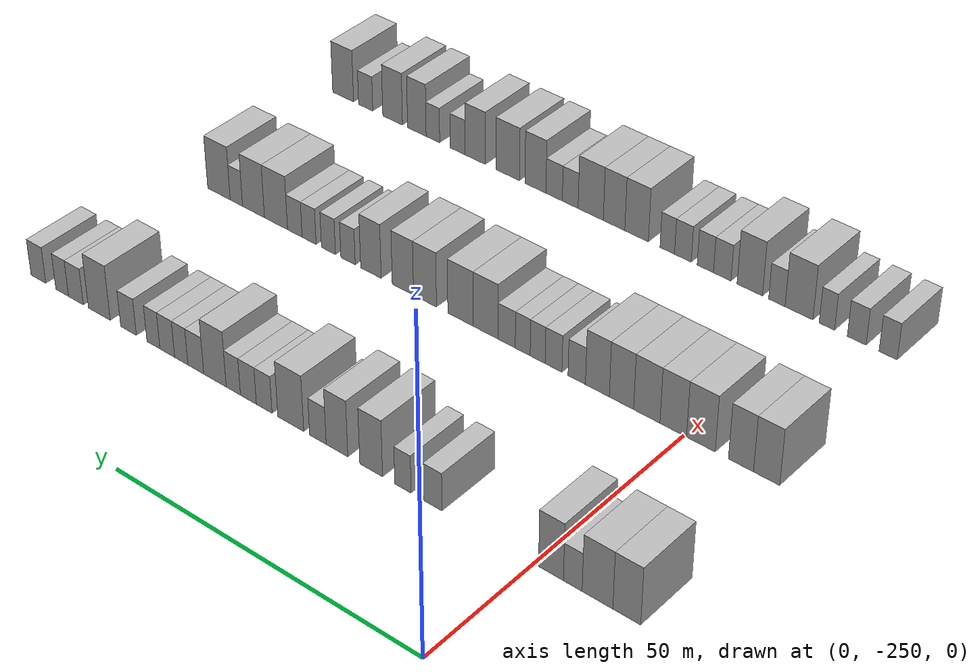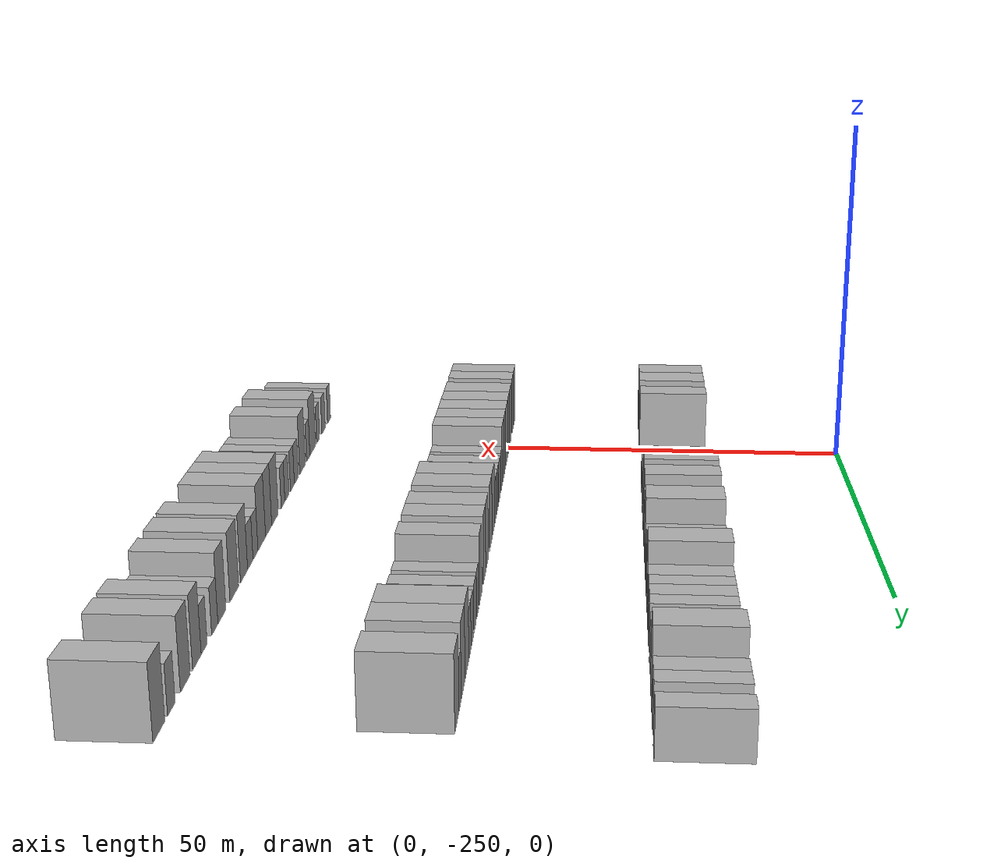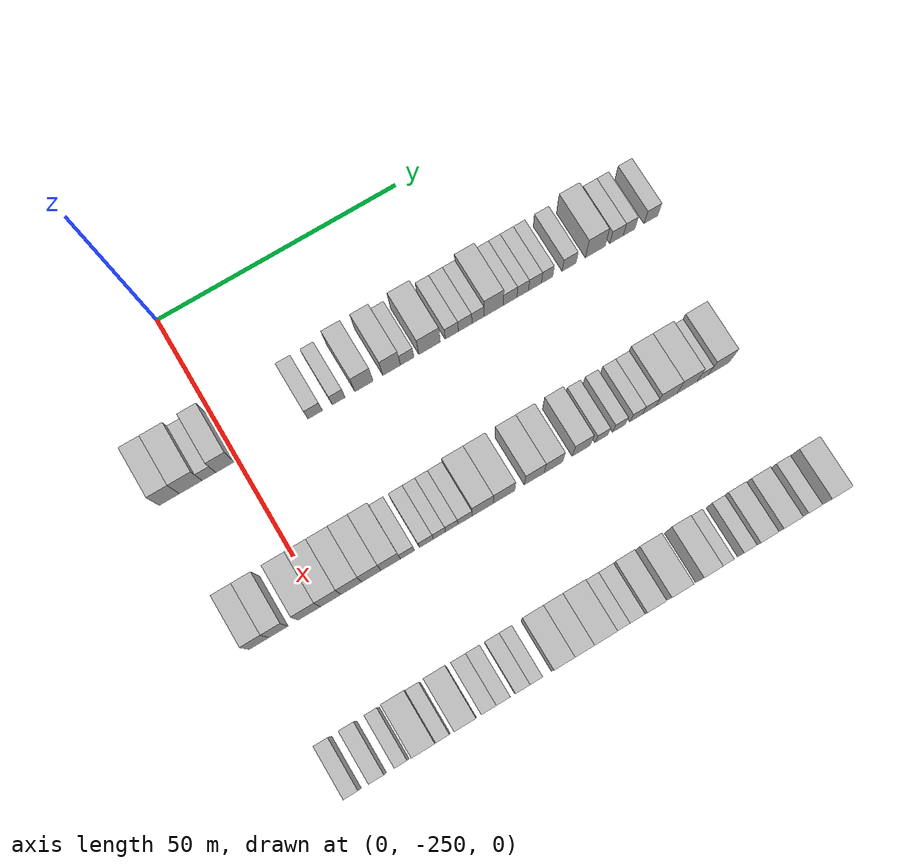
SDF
<sdf version="1.6">
 <world name="default">
  <model name="building_47">
   <static>1</static>
   <pose>25.0000 -263.6717 0 0.000000 0.000000 0.000000</pose>
   <link name="link">
    <pose>0 0 4.50 0 0 0</pose>
    <collision name="collision"><geometry><box><size>10.0000 4.0322 9.0000</size></box></geometry></collision>
    <visual name="visual">
     <cast_shadows>0</cast_shadows>
     <geometry><box><size>10.0000 4.0322 9.0000</size></box></geometry>
     <material>
      <script>
       <uri>model://HANNAS_wall/materials/scripts</uri>
       <uri>model://HANNAS_wall/materials/textures</uri>
       <name>vrc/HANNAS_wall</name>
      </script>
     </material>
    </visual>
   </link>
  </model>
  <model name="building_48">
   <static>1</static>
   <pose>25.0000 -259.4059 0 0.000000 0.000000 0.000000</pose>
   <link name="link">
    <pose>0 0 4.50 0 0 0</pose>
    <collision name="collision"><geometry><box><size>10.0000 4.4994 9.0000</size></box></geometry></collision>
    <visual name="visual">
     <cast_shadows>0</cast_shadows>
     <geometry><box><size>10.0000 4.4994 9.0000</size></box></geometry>
     <material>
      <script>
       <uri>model://HANNAS_wall/materials/scripts</uri>
       <uri>model://HANNAS_wall/materials/textures</uri>
       <name>vrc/HANNAS_wall</name>
      </script>
     </material>
    </visual>
   </link>
  </model>
  <model name="building_49">
   <static>1</static>
   <pose>25.0000 -255.7638 0 0.000000 0.000000 0.000000</pose>
   <link name="link">
    <pose>0 0 3.00 0 0 0</pose>
    <collision name="collision"><geometry><box><size>10.0000 2.7847 6.0000</size></box></geometry></collision>
    <visual name="visual">
     <cast_shadows>0</cast_shadows>
     <geometry><box><size>10.0000 2.7847 6.0000</size></box></geometry>
     <material>
      <script>
       <uri>model://HANNAS_wall/materials/scripts</uri>
       <uri>model://HANNAS_wall/materials/textures</uri>
       <name>vrc/HANNAS_wall</name>
      </script>
     </material>
    </visual>
   </link>
  </model>
  <model name="building_50">
   <static>1</static>
   <pose>25.0000 -252.5081 0 0.000000 0.000000 0.000000</pose>
   <link name="link">
    <pose>0 0 4.50 0 0 0</pose>
    <collision name="collision"><geometry><box><size>10.0000 3.7268 9.0000</size></box></geometry></collision>
    <visual name="visual">
     <cast_shadows>0</cast_shadows>
     <geometry><box><size>10.0000 3.7268 9.0000</size></box></geometry>
     <material>
      <script>
       <uri>model://HANNAS_wall/materials/scripts</uri>
       <uri>model://HANNAS_wall/materials/textures</uri>
       <name>vrc/HANNAS_wall</name>
      </script>
     </material>
    </visual>
   </link>
  </model>
  <model name="building_51">
   <static>1</static>
   <pose>25.0000 -234.1834 0 0.000000 0.000000 0.000000</pose>
   <link name="link">
    <pose>0 0 3.00 0 0 0</pose>
    <collision name="collision"><geometry><box><size>10.0000 2.9742 6.0000</size></box></geometry></collision>
    <visual name="visual">
     <cast_shadows>0</cast_shadows>
     <geometry><box><size>10.0000 2.9742 6.0000</size></box></geometry>
     <material>
      <script>
       <uri>model://HANNAS_wall/materials/scripts</uri>
       <uri>model://HANNAS_wall/materials/textures</uri>
       <name>vrc/HANNAS_wall</name>
      </script>
     </material>
    </visual>
   </link>
  </model>
  <model name="building_52">
   <static>1</static>
   <pose>25.0000 -229.3756 0 0.000000 0.000000 0.000000</pose>
   <link name="link">
    <pose>0 0 3.00 0 0 0</pose>
    <collision name="collision"><geometry><box><size>10.0000 2.6413 6.0000</size></box></geometry></collision>
    <visual name="visual">
     <cast_shadows>0</cast_shadows>
     <geometry><box><size>10.0000 2.6413 6.0000</size></box></geometry>
     <material>
      <script>
       <uri>model://HANNAS_wall/materials/scripts</uri>
       <uri>model://HANNAS_wall/materials/textures</uri>
       <name>vrc/HANNAS_wall</name>
      </script>
     </material>
    </visual>
   </link>
  </model>
  <model name="building_53">
   <static>1</static>
   <pose>25.0000 -224.1693 0 0.000000 0.000000 0.000000</pose>
   <link name="link">
    <pose>0 0 4.50 0 0 0</pose>
    <collision name="collision"><geometry><box><size>10.0000 3.7714 9.0000</size></box></geometry></collision>
    <visual name="visual">
     <cast_shadows>0</cast_shadows>
     <geometry><box><size>10.0000 3.7714 9.0000</size></box></geometry>
     <material>
      <script>
       <uri>model://HANNAS_wall/materials/scripts</uri>
       <uri>model://HANNAS_wall/materials/textures</uri>
       <name>vrc/HANNAS_wall</name>
      </script>
     </material>
    </visual>
   </link>
  </model>
  <model name="building_54">
   <static>1</static>
   <pose>25.0000 -218.4559 0 0.000000 0.000000 0.000000</pose>
   <link name="link">
    <pose>0 0 4.50 0 0 0</pose>
    <collision name="collision"><geometry><box><size>10.0000 3.6554 9.0000</size></box></geometry></collision>
    <visual name="visual">
     <cast_shadows>0</cast_shadows>
     <geometry><box><size>10.0000 3.6554 9.0000</size></box></geometry>
     <material>
      <script>
       <uri>model://HANNAS_wall/materials/scripts</uri>
       <uri>model://HANNAS_wall/materials/textures</uri>
       <name>vrc/HANNAS_wall</name>
      </script>
     </material>
    </visual>
   </link>
  </model>
  <model name="building_55">
   <static>1</static>
   <pose>25.0000 -215.2184 0 0.000000 0.000000 0.000000</pose>
   <link name="link">
    <pose>0 0 3.00 0 0 0</pose>
    <collision name="collision"><geometry><box><size>10.0000 2.8195 6.0000</size></box></geometry></collision>
    <visual name="visual">
     <cast_shadows>0</cast_shadows>
     <geometry><box><size>10.0000 2.8195 6.0000</size></box></geometry>
     <material>
      <script>
       <uri>model://HANNAS_wall/materials/scripts</uri>
       <uri>model://HANNAS_wall/materials/textures</uri>
       <name>vrc/HANNAS_wall</name>
      </script>
     </material>
    </visual>
   </link>
  </model>
  <model name="building_56">
   <static>1</static>
   <pose>25.0000 -210.5609 0 0.000000 0.000000 0.000000</pose>
   <link name="link">
    <pose>0 0 4.50 0 0 0</pose>
    <collision name="collision"><geometry><box><size>10.0000 4.4955 9.0000</size></box></geometry></collision>
    <visual name="visual">
     <cast_shadows>0</cast_shadows>
     <geometry><box><size>10.0000 4.4955 9.0000</size></box></geometry>
     <material>
      <script>
       <uri>model://HANNAS_wall/materials/scripts</uri>
       <uri>model://HANNAS_wall/materials/textures</uri>
       <name>vrc/HANNAS_wall</name>
      </script>
     </material>
    </visual>
   </link>
  </model>
  <model name="building_57">
   <static>1</static>
   <pose>25.0000 -205.9289 0 0.000000 0.000000 0.000000</pose>
   <link name="link">
    <pose>0 0 3.00 0 0 0</pose>
    <collision name="collision"><geometry><box><size>10.0000 2.7685 6.0000</size></box></geometry></collision>
    <visual name="visual">
     <cast_shadows>0</cast_shadows>
     <geometry><box><size>10.0000 2.7685 6.0000</size></box></geometry>
     <material>
      <script>
       <uri>model://HANNAS_wall/materials/scripts</uri>
       <uri>model://HANNAS_wall/materials/textures</uri>
       <name>vrc/HANNAS_wall</name>
      </script>
     </material>
    </visual>
   </link>
  </model>
  <model name="building_58">
   <static>1</static>
   <pose>25.0000 -203.1325 0 0.000000 0.000000 0.000000</pose>
   <link name="link">
    <pose>0 0 3.00 0 0 0</pose>
    <collision name="collision"><geometry><box><size>10.0000 2.8243 6.0000</size></box></geometry></collision>
    <visual name="visual">
     <cast_shadows>0</cast_shadows>
     <geometry><box><size>10.0000 2.8243 6.0000</size></box></geometry>
     <material>
      <script>
       <uri>model://HANNAS_wall/materials/scripts</uri>
       <uri>model://HANNAS_wall/materials/textures</uri>
       <name>vrc/HANNAS_wall</name>
      </script>
     </material>
    </visual>
   </link>
  </model>
  <model name="building_59">
   <static>1</static>
   <pose>25.0000 -200.4488 0 0.000000 0.000000 0.000000</pose>
   <link name="link">
    <pose>0 0 3.00 0 0 0</pose>
    <collision name="collision"><geometry><box><size>10.0000 2.5430 6.0000</size></box></geometry></collision>
    <visual name="visual">
     <cast_shadows>0</cast_shadows>
     <geometry><box><size>10.0000 2.5430 6.0000</size></box></geometry>
     <material>
      <script>
       <uri>model://HANNAS_wall/materials/scripts</uri>
       <uri>model://HANNAS_wall/materials/textures</uri>
       <name>vrc/HANNAS_wall</name>
      </script>
     </material>
    </visual>
   </link>
  </model>
  <model name="building_60">
   <static>1</static>
   <pose>25.0000 -197.1467 0 0.000000 0.000000 0.000000</pose>
   <link name="link">
    <pose>0 0 4.50 0 0 0</pose>
    <collision name="collision"><geometry><box><size>10.0000 4.0612 9.0000</size></box></geometry></collision>
    <visual name="visual">
     <cast_shadows>0</cast_shadows>
     <geometry><box><size>10.0000 4.0612 9.0000</size></box></geometry>
     <material>
      <script>
       <uri>model://HANNAS_wall/materials/scripts</uri>
       <uri>model://HANNAS_wall/materials/textures</uri>
       <name>vrc/HANNAS_wall</name>
      </script>
     </material>
    </visual>
   </link>
  </model>
  <model name="building_61">
   <static>1</static>
   <pose>25.0000 -193.6598 0 0.000000 0.000000 0.000000</pose>
   <link name="link">
    <pose>0 0 3.00 0 0 0</pose>
    <collision name="collision"><geometry><box><size>10.0000 2.9126 6.0000</size></box></geometry></collision>
    <visual name="visual">
     <cast_shadows>0</cast_shadows>
     <geometry><box><size>10.0000 2.9126 6.0000</size></box></geometry>
     <material>
      <script>
       <uri>model://HANNAS_wall/materials/scripts</uri>
       <uri>model://HANNAS_wall/materials/textures</uri>
       <name>vrc/HANNAS_wall</name>
      </script>
     </material>
    </visual>
   </link>
  </model>
  <model name="building_62">
   <static>1</static>
   <pose>25.0000 -190.9845 0 0.000000 0.000000 0.000000</pose>
   <link name="link">
    <pose>0 0 3.00 0 0 0</pose>
    <collision name="collision"><geometry><box><size>10.0000 2.4381 6.0000</size></box></geometry></collision>
    <visual name="visual">
     <cast_shadows>0</cast_shadows>
     <geometry><box><size>10.0000 2.4381 6.0000</size></box></geometry>
     <material>
      <script>
       <uri>model://HANNAS_wall/materials/scripts</uri>
       <uri>model://HANNAS_wall/materials/textures</uri>
       <name>vrc/HANNAS_wall</name>
      </script>
     </material>
    </visual>
   </link>
  </model>
  <model name="building_63">
   <static>1</static>
   <pose>25.0000 -188.3948 0 0.000000 0.000000 0.000000</pose>
   <link name="link">
    <pose>0 0 3.00 0 0 0</pose>
    <collision name="collision"><geometry><box><size>10.0000 2.7412 6.0000</size></box></geometry></collision>
    <visual name="visual">
     <cast_shadows>0</cast_shadows>
     <geometry><box><size>10.0000 2.7412 6.0000</size></box></geometry>
     <material>
      <script>
       <uri>model://HANNAS_wall/materials/scripts</uri>
       <uri>model://HANNAS_wall/materials/textures</uri>
       <name>vrc/HANNAS_wall</name>
      </script>
     </material>
    </visual>
   </link>
  </model>
  <model name="building_64">
   <static>1</static>
   <pose>25.0000 -185.8143 0 0.000000 0.000000 0.000000</pose>
   <link name="link">
    <pose>0 0 3.00 0 0 0</pose>
    <collision name="collision"><geometry><box><size>10.0000 2.4200 6.0000</size></box></geometry></collision>
    <visual name="visual">
     <cast_shadows>0</cast_shadows>
     <geometry><box><size>10.0000 2.4200 6.0000</size></box></geometry>
     <material>
      <script>
       <uri>model://HANNAS_wall/materials/scripts</uri>
       <uri>model://HANNAS_wall/materials/textures</uri>
       <name>vrc/HANNAS_wall</name>
      </script>
     </material>
    </visual>
   </link>
  </model>
  <model name="building_65">
   <static>1</static>
   <pose>25.0000 -181.1147 0 0.000000 0.000000 0.000000</pose>
   <link name="link">
    <pose>0 0 3.00 0 0 0</pose>
    <collision name="collision"><geometry><box><size>10.0000 2.9792 6.0000</size></box></geometry></collision>
    <visual name="visual">
     <cast_shadows>0</cast_shadows>
     <geometry><box><size>10.0000 2.9792 6.0000</size></box></geometry>
     <material>
      <script>
       <uri>model://HANNAS_wall/materials/scripts</uri>
       <uri>model://HANNAS_wall/materials/textures</uri>
       <name>vrc/HANNAS_wall</name>
      </script>
     </material>
    </visual>
   </link>
  </model>
  <model name="building_66">
   <static>1</static>
   <pose>25.0000 -175.5113 0 0.000000 0.000000 0.000000</pose>
   <link name="link">
    <pose>0 0 4.50 0 0 0</pose>
    <collision name="collision"><geometry><box><size>10.0000 4.2276 9.0000</size></box></geometry></collision>
    <visual name="visual">
     <cast_shadows>0</cast_shadows>
     <geometry><box><size>10.0000 4.2276 9.0000</size></box></geometry>
     <material>
      <script>
       <uri>model://HANNAS_wall/materials/scripts</uri>
       <uri>model://HANNAS_wall/materials/textures</uri>
       <name>vrc/HANNAS_wall</name>
      </script>
     </material>
    </visual>
   </link>
  </model>
  <model name="building_67">
   <static>1</static>
   <pose>25.0000 -170.9420 0 0.000000 0.000000 0.000000</pose>
   <link name="link">
    <pose>0 0 3.00 0 0 0</pose>
    <collision name="collision"><geometry><box><size>10.0000 2.9110 6.0000</size></box></geometry></collision>
    <visual name="visual">
     <cast_shadows>0</cast_shadows>
     <geometry><box><size>10.0000 2.9110 6.0000</size></box></geometry>
     <material>
      <script>
       <uri>model://HANNAS_wall/materials/scripts</uri>
       <uri>model://HANNAS_wall/materials/textures</uri>
       <name>vrc/HANNAS_wall</name>
      </script>
     </material>
    </visual>
   </link>
  </model>
  <model name="building_68">
   <static>1</static>
   <pose>25.0000 -168.2337 0 0.000000 0.000000 0.000000</pose>
   <link name="link">
    <pose>0 0 3.00 0 0 0</pose>
    <collision name="collision"><geometry><box><size>10.0000 2.5056 6.0000</size></box></geometry></collision>
    <visual name="visual">
     <cast_shadows>0</cast_shadows>
     <geometry><box><size>10.0000 2.5056 6.0000</size></box></geometry>
     <material>
      <script>
       <uri>model://HANNAS_wall/materials/scripts</uri>
       <uri>model://HANNAS_wall/materials/textures</uri>
       <name>vrc/HANNAS_wall</name>
      </script>
     </material>
    </visual>
   </link>
  </model>
  <model name="building_69">
   <static>1</static>
   <pose>25.0000 -163.5048 0 0.000000 0.000000 0.000000</pose>
   <link name="link">
    <pose>0 0 3.00 0 0 0</pose>
    <collision name="collision"><geometry><box><size>10.0000 2.9521 6.0000</size></box></geometry></collision>
    <visual name="visual">
     <cast_shadows>0</cast_shadows>
     <geometry><box><size>10.0000 2.9521 6.0000</size></box></geometry>
     <material>
      <script>
       <uri>model://HANNAS_wall/materials/scripts</uri>
       <uri>model://HANNAS_wall/materials/textures</uri>
       <name>vrc/HANNAS_wall</name>
      </script>
     </material>
    </visual>
   </link>
  </model>
  <model name="building_258">
   <static>1</static>
   <pose>55.0000 -262.4374 0 0.000000 0.000000 0.000000</pose>
   <link name="link">
    <pose>0 0 4.50 0 0 0</pose>
    <collision name="collision"><geometry><box><size>10.0000 3.9064 9.0000</size></box></geometry></collision>
    <visual name="visual">
     <cast_shadows>0</cast_shadows>
     <geometry><box><size>10.0000 3.9064 9.0000</size></box></geometry>
     <material>
      <script>
       <uri>model://HANNAS_wall/materials/scripts</uri>
       <uri>model://HANNAS_wall/materials/textures</uri>
       <name>vrc/HANNAS_wall</name>
      </script>
     </material>
    </visual>
   </link>
  </model>
  <model name="building_259">
   <static>1</static>
   <pose>55.0000 -258.6001 0 0.000000 0.000000 0.000000</pose>
   <link name="link">
    <pose>0 0 4.50 0 0 0</pose>
    <collision name="collision"><geometry><box><size>10.0000 3.7682 9.0000</size></box></geometry></collision>
    <visual name="visual">
     <cast_shadows>0</cast_shadows>
     <geometry><box><size>10.0000 3.7682 9.0000</size></box></geometry>
     <material>
      <script>
       <uri>model://HANNAS_wall/materials/scripts</uri>
       <uri>model://HANNAS_wall/materials/textures</uri>
       <name>vrc/HANNAS_wall</name>
      </script>
     </material>
    </visual>
   </link>
  </model>
  <model name="building_260">
   <static>1</static>
   <pose>55.0000 -252.5086 0 0.000000 0.000000 0.000000</pose>
   <link name="link">
    <pose>0 0 4.50 0 0 0</pose>
    <collision name="collision"><geometry><box><size>10.0000 4.4147 9.0000</size></box></geometry></collision>
    <visual name="visual">
     <cast_shadows>0</cast_shadows>
     <geometry><box><size>10.0000 4.4147 9.0000</size></box></geometry>
     <material>
      <script>
       <uri>model://HANNAS_wall/materials/scripts</uri>
       <uri>model://HANNAS_wall/materials/textures</uri>
       <name>vrc/HANNAS_wall</name>
      </script>
     </material>
    </visual>
   </link>
  </model>
  <model name="building_261">
   <static>1</static>
   <pose>55.0000 -248.2324 0 0.000000 0.000000 0.000000</pose>
   <link name="link">
    <pose>0 0 4.50 0 0 0</pose>
    <collision name="collision"><geometry><box><size>10.0000 4.1377 9.0000</size></box></geometry></collision>
    <visual name="visual">
     <cast_shadows>0</cast_shadows>
     <geometry><box><size>10.0000 4.1377 9.0000</size></box></geometry>
     <material>
      <script>
       <uri>model://HANNAS_wall/materials/scripts</uri>
       <uri>model://HANNAS_wall/materials/textures</uri>
       <name>vrc/HANNAS_wall</name>
      </script>
     </material>
    </visual>
   </link>
  </model>
  <model name="building_262">
   <static>1</static>
   <pose>55.0000 -244.0837 0 0.000000 0.000000 0.000000</pose>
   <link name="link">
    <pose>0 0 4.50 0 0 0</pose>
    <collision name="collision"><geometry><box><size>10.0000 4.1596 9.0000</size></box></geometry></collision>
    <visual name="visual">
     <cast_shadows>0</cast_shadows>
     <geometry><box><size>10.0000 4.1596 9.0000</size></box></geometry>
     <material>
      <script>
       <uri>model://HANNAS_wall/materials/scripts</uri>
       <uri>model://HANNAS_wall/materials/textures</uri>
       <name>vrc/HANNAS_wall</name>
      </script>
     </material>
    </visual>
   </link>
  </model>
  <model name="building_263">
   <static>1</static>
   <pose>55.0000 -240.0578 0 0.000000 0.000000 0.000000</pose>
   <link name="link">
    <pose>0 0 4.50 0 0 0</pose>
    <collision name="collision"><geometry><box><size>10.0000 3.8922 9.0000</size></box></geometry></collision>
    <visual name="visual">
     <cast_shadows>0</cast_shadows>
     <geometry><box><size>10.0000 3.8922 9.0000</size></box></geometry>
     <material>
      <script>
       <uri>model://HANNAS_wall/materials/scripts</uri>
       <uri>model://HANNAS_wall/materials/textures</uri>
       <name>vrc/HANNAS_wall</name>
      </script>
     </material>
    </visual>
   </link>
  </model>
  <model name="building_264">
   <static>1</static>
   <pose>55.0000 -236.1780 0 0.000000 0.000000 0.000000</pose>
   <link name="link">
    <pose>0 0 4.50 0 0 0</pose>
    <collision name="collision"><geometry><box><size>10.0000 3.8673 9.0000</size></box></geometry></collision>
    <visual name="visual">
     <cast_shadows>0</cast_shadows>
     <geometry><box><size>10.0000 3.8673 9.0000</size></box></geometry>
     <material>
      <script>
       <uri>model://HANNAS_wall/materials/scripts</uri>
       <uri>model://HANNAS_wall/materials/textures</uri>
       <name>vrc/HANNAS_wall</name>
      </script>
     </material>
    </visual>
   </link>
  </model>
  <model name="building_265">
   <static>1</static>
   <pose>55.0000 -232.8194 0 0.000000 0.000000 0.000000</pose>
   <link name="link">
    <pose>0 0 3.00 0 0 0</pose>
    <collision name="collision"><geometry><box><size>10.0000 2.8499 6.0000</size></box></geometry></collision>
    <visual name="visual">
     <cast_shadows>0</cast_shadows>
     <geometry><box><size>10.0000 2.8499 6.0000</size></box></geometry>
     <material>
      <script>
       <uri>model://HANNAS_wall/materials/scripts</uri>
       <uri>model://HANNAS_wall/materials/textures</uri>
       <name>vrc/HANNAS_wall</name>
      </script>
     </material>
    </visual>
   </link>
  </model>
  <model name="building_266">
   <static>1</static>
   <pose>55.0000 -228.9984 0 0.000000 0.000000 0.000000</pose>
   <link name="link">
    <pose>0 0 3.00 0 0 0</pose>
    <collision name="collision"><geometry><box><size>10.0000 2.7922 6.0000</size></box></geometry></collision>
    <visual name="visual">
     <cast_shadows>0</cast_shadows>
     <geometry><box><size>10.0000 2.7922 6.0000</size></box></geometry>
     <material>
      <script>
       <uri>model://HANNAS_wall/materials/scripts</uri>
       <uri>model://HANNAS_wall/materials/textures</uri>
       <name>vrc/HANNAS_wall</name>
      </script>
     </material>
    </visual>
   </link>
  </model>
  <model name="building_267">
   <static>1</static>
   <pose>55.0000 -226.3514 0 0.000000 0.000000 0.000000</pose>
   <link name="link">
    <pose>0 0 3.00 0 0 0</pose>
    <collision name="collision"><geometry><box><size>10.0000 2.5018 6.0000</size></box></geometry></collision>
    <visual name="visual">
     <cast_shadows>0</cast_shadows>
     <geometry><box><size>10.0000 2.5018 6.0000</size></box></geometry>
     <material>
      <script>
       <uri>model://HANNAS_wall/materials/scripts</uri>
       <uri>model://HANNAS_wall/materials/textures</uri>
       <name>vrc/HANNAS_wall</name>
      </script>
     </material>
    </visual>
   </link>
  </model>
  <model name="building_268">
   <static>1</static>
   <pose>55.0000 -223.8440 0 0.000000 0.000000 0.000000</pose>
   <link name="link">
    <pose>0 0 3.00 0 0 0</pose>
    <collision name="collision"><geometry><box><size>10.0000 2.5130 6.0000</size></box></geometry></collision>
    <visual name="visual">
     <cast_shadows>0</cast_shadows>
     <geometry><box><size>10.0000 2.5130 6.0000</size></box></geometry>
     <material>
      <script>
       <uri>model://HANNAS_wall/materials/scripts</uri>
       <uri>model://HANNAS_wall/materials/textures</uri>
       <name>vrc/HANNAS_wall</name>
      </script>
     </material>
    </visual>
   </link>
  </model>
  <model name="building_269">
   <static>1</static>
   <pose>55.0000 -221.1241 0 0.000000 0.000000 0.000000</pose>
   <link name="link">
    <pose>0 0 3.00 0 0 0</pose>
    <collision name="collision"><geometry><box><size>10.0000 2.9268 6.0000</size></box></geometry></collision>
    <visual name="visual">
     <cast_shadows>0</cast_shadows>
     <geometry><box><size>10.0000 2.9268 6.0000</size></box></geometry>
     <material>
      <script>
       <uri>model://HANNAS_wall/materials/scripts</uri>
       <uri>model://HANNAS_wall/materials/textures</uri>
       <name>vrc/HANNAS_wall</name>
      </script>
     </material>
    </visual>
   </link>
  </model>
  <model name="building_270">
   <static>1</static>
   <pose>55.0000 -217.5250 0 0.000000 0.000000 0.000000</pose>
   <link name="link">
    <pose>0 0 4.50 0 0 0</pose>
    <collision name="collision"><geometry><box><size>10.0000 4.2714 9.0000</size></box></geometry></collision>
    <visual name="visual">
     <cast_shadows>0</cast_shadows>
     <geometry><box><size>10.0000 4.2714 9.0000</size></box></geometry>
     <material>
      <script>
       <uri>model://HANNAS_wall/materials/scripts</uri>
       <uri>model://HANNAS_wall/materials/textures</uri>
       <name>vrc/HANNAS_wall</name>
      </script>
     </material>
    </visual>
   </link>
  </model>
  <model name="building_271">
   <static>1</static>
   <pose>55.0000 -213.1846 0 0.000000 0.000000 0.000000</pose>
   <link name="link">
    <pose>0 0 4.50 0 0 0</pose>
    <collision name="collision"><geometry><box><size>10.0000 4.4095 9.0000</size></box></geometry></collision>
    <visual name="visual">
     <cast_shadows>0</cast_shadows>
     <geometry><box><size>10.0000 4.4095 9.0000</size></box></geometry>
     <material>
      <script>
       <uri>model://HANNAS_wall/materials/scripts</uri>
       <uri>model://HANNAS_wall/materials/textures</uri>
       <name>vrc/HANNAS_wall</name>
      </script>
     </material>
    </visual>
   </link>
  </model>
  <model name="building_272">
   <static>1</static>
   <pose>55.0000 -206.9467 0 0.000000 0.000000 0.000000</pose>
   <link name="link">
    <pose>0 0 4.50 0 0 0</pose>
    <collision name="collision"><geometry><box><size>10.0000 4.0662 9.0000</size></box></geometry></collision>
    <visual name="visual">
     <cast_shadows>0</cast_shadows>
     <geometry><box><size>10.0000 4.0662 9.0000</size></box></geometry>
     <material>
      <script>
       <uri>model://HANNAS_wall/materials/scripts</uri>
       <uri>model://HANNAS_wall/materials/textures</uri>
       <name>vrc/HANNAS_wall</name>
      </script>
     </material>
    </visual>
   </link>
  </model>
  <model name="building_273">
   <static>1</static>
   <pose>55.0000 -203.0030 0 0.000000 0.000000 0.000000</pose>
   <link name="link">
    <pose>0 0 4.50 0 0 0</pose>
    <collision name="collision"><geometry><box><size>10.0000 3.8213 9.0000</size></box></geometry></collision>
    <visual name="visual">
     <cast_shadows>0</cast_shadows>
     <geometry><box><size>10.0000 3.8213 9.0000</size></box></geometry>
     <material>
      <script>
       <uri>model://HANNAS_wall/materials/scripts</uri>
       <uri>model://HANNAS_wall/materials/textures</uri>
       <name>vrc/HANNAS_wall</name>
      </script>
     </material>
    </visual>
   </link>
  </model>
  <model name="building_274">
   <static>1</static>
   <pose>55.0000 -197.2117 0 0.000000 0.000000 0.000000</pose>
   <link name="link">
    <pose>0 0 4.50 0 0 0</pose>
    <collision name="collision"><geometry><box><size>10.0000 3.7611 9.0000</size></box></geometry></collision>
    <visual name="visual">
     <cast_shadows>0</cast_shadows>
     <geometry><box><size>10.0000 3.7611 9.0000</size></box></geometry>
     <material>
      <script>
       <uri>model://HANNAS_wall/materials/scripts</uri>
       <uri>model://HANNAS_wall/materials/textures</uri>
       <name>vrc/HANNAS_wall</name>
      </script>
     </material>
    </visual>
   </link>
  </model>
  <model name="building_275">
   <static>1</static>
   <pose>55.0000 -192.9987 0 0.000000 0.000000 0.000000</pose>
   <link name="link">
    <pose>0 0 3.00 0 0 0</pose>
    <collision name="collision"><geometry><box><size>10.0000 2.6649 6.0000</size></box></geometry></collision>
    <visual name="visual">
     <cast_shadows>0</cast_shadows>
     <geometry><box><size>10.0000 2.6649 6.0000</size></box></geometry>
     <material>
      <script>
       <uri>model://HANNAS_wall/materials/scripts</uri>
       <uri>model://HANNAS_wall/materials/textures</uri>
       <name>vrc/HANNAS_wall</name>
      </script>
     </material>
    </visual>
   </link>
  </model>
  <model name="building_276">
   <static>1</static>
   <pose>55.0000 -189.3510 0 0.000000 0.000000 0.000000</pose>
   <link name="link">
    <pose>0 0 3.00 0 0 0</pose>
    <collision name="collision"><geometry><box><size>10.0000 2.6305 6.0000</size></box></geometry></collision>
    <visual name="visual">
     <cast_shadows>0</cast_shadows>
     <geometry><box><size>10.0000 2.6305 6.0000</size></box></geometry>
     <material>
      <script>
       <uri>model://HANNAS_wall/materials/scripts</uri>
       <uri>model://HANNAS_wall/materials/textures</uri>
       <name>vrc/HANNAS_wall</name>
      </script>
     </material>
    </visual>
   </link>
  </model>
  <model name="building_277">
   <static>1</static>
   <pose>55.0000 -185.7090 0 0.000000 0.000000 0.000000</pose>
   <link name="link">
    <pose>0 0 3.00 0 0 0</pose>
    <collision name="collision"><geometry><box><size>10.0000 2.6535 6.0000</size></box></geometry></collision>
    <visual name="visual">
     <cast_shadows>0</cast_shadows>
     <geometry><box><size>10.0000 2.6535 6.0000</size></box></geometry>
     <material>
      <script>
       <uri>model://HANNAS_wall/materials/scripts</uri>
       <uri>model://HANNAS_wall/materials/textures</uri>
       <name>vrc/HANNAS_wall</name>
      </script>
     </material>
    </visual>
   </link>
  </model>
  <model name="building_278">
   <static>1</static>
   <pose>55.0000 -182.9920 0 0.000000 0.000000 0.000000</pose>
   <link name="link">
    <pose>0 0 3.00 0 0 0</pose>
    <collision name="collision"><geometry><box><size>10.0000 2.7804 6.0000</size></box></geometry></collision>
    <visual name="visual">
     <cast_shadows>0</cast_shadows>
     <geometry><box><size>10.0000 2.7804 6.0000</size></box></geometry>
     <material>
      <script>
       <uri>model://HANNAS_wall/materials/scripts</uri>
       <uri>model://HANNAS_wall/materials/textures</uri>
       <name>vrc/HANNAS_wall</name>
      </script>
     </material>
    </visual>
   </link>
  </model>
  <model name="building_279">
   <static>1</static>
   <pose>55.0000 -179.3721 0 0.000000 0.000000 0.000000</pose>
   <link name="link">
    <pose>0 0 4.50 0 0 0</pose>
    <collision name="collision"><geometry><box><size>10.0000 4.4594 9.0000</size></box></geometry></collision>
    <visual name="visual">
     <cast_shadows>0</cast_shadows>
     <geometry><box><size>10.0000 4.4594 9.0000</size></box></geometry>
     <material>
      <script>
       <uri>model://HANNAS_wall/materials/scripts</uri>
       <uri>model://HANNAS_wall/materials/textures</uri>
       <name>vrc/HANNAS_wall</name>
      </script>
     </material>
    </visual>
   </link>
  </model>
  <model name="building_280">
   <static>1</static>
   <pose>55.0000 -175.0009 0 0.000000 0.000000 0.000000</pose>
   <link name="link">
    <pose>0 0 4.50 0 0 0</pose>
    <collision name="collision"><geometry><box><size>10.0000 4.2830 9.0000</size></box></geometry></collision>
    <visual name="visual">
     <cast_shadows>0</cast_shadows>
     <geometry><box><size>10.0000 4.2830 9.0000</size></box></geometry>
     <material>
      <script>
       <uri>model://HANNAS_wall/materials/scripts</uri>
       <uri>model://HANNAS_wall/materials/textures</uri>
       <name>vrc/HANNAS_wall</name>
      </script>
     </material>
    </visual>
   </link>
  </model>
  <model name="building_281">
   <static>1</static>
   <pose>55.0000 -171.6424 0 0.000000 0.000000 0.000000</pose>
   <link name="link">
    <pose>0 0 3.00 0 0 0</pose>
    <collision name="collision"><geometry><box><size>10.0000 2.4339 6.0000</size></box></geometry></collision>
    <visual name="visual">
     <cast_shadows>0</cast_shadows>
     <geometry><box><size>10.0000 2.4339 6.0000</size></box></geometry>
     <material>
      <script>
       <uri>model://HANNAS_wall/materials/scripts</uri>
       <uri>model://HANNAS_wall/materials/textures</uri>
       <name>vrc/HANNAS_wall</name>
      </script>
     </material>
    </visual>
   </link>
  </model>
  <model name="building_282">
   <static>1</static>
   <pose>55.0000 -168.1907 0 0.000000 0.000000 0.000000</pose>
   <link name="link">
    <pose>0 0 4.50 0 0 0</pose>
    <collision name="collision"><geometry><box><size>10.0000 4.4695 9.0000</size></box></geometry></collision>
    <visual name="visual">
     <cast_shadows>0</cast_shadows>
     <geometry><box><size>10.0000 4.4695 9.0000</size></box></geometry>
     <material>
      <script>
       <uri>model://HANNAS_wall/materials/scripts</uri>
       <uri>model://HANNAS_wall/materials/textures</uri>
       <name>vrc/HANNAS_wall</name>
      </script>
     </material>
    </visual>
   </link>
  </model>
  <model name="building_480">
   <static>1</static>
   <pose>85.0000 -260.9248 0 0.000000 0.000000 0.000000</pose>
   <link name="link">
    <pose>0 0 3.00 0 0 0</pose>
    <collision name="collision"><geometry><box><size>10.0000 2.7818 6.0000</size></box></geometry></collision>
    <visual name="visual">
     <cast_shadows>0</cast_shadows>
     <geometry><box><size>10.0000 2.7818 6.0000</size></box></geometry>
     <material>
      <script>
       <uri>model://HANNAS_wall/materials/scripts</uri>
       <uri>model://HANNAS_wall/materials/textures</uri>
       <name>vrc/HANNAS_wall</name>
      </script>
     </material>
    </visual>
   </link>
  </model>
  <model name="building_481">
   <static>1</static>
   <pose>85.0000 -256.0722 0 0.000000 0.000000 0.000000</pose>
   <link name="link">
    <pose>0 0 3.00 0 0 0</pose>
    <collision name="collision"><geometry><box><size>10.0000 2.9233 6.0000</size></box></geometry></collision>
    <visual name="visual">
     <cast_shadows>0</cast_shadows>
     <geometry><box><size>10.0000 2.9233 6.0000</size></box></geometry>
     <material>
      <script>
       <uri>model://HANNAS_wall/materials/scripts</uri>
       <uri>model://HANNAS_wall/materials/textures</uri>
       <name>vrc/HANNAS_wall</name>
      </script>
     </material>
    </visual>
   </link>
  </model>
  <model name="building_482">
   <static>1</static>
   <pose>85.0000 -251.3925 0 0.000000 0.000000 0.000000</pose>
   <link name="link">
    <pose>0 0 3.00 0 0 0</pose>
    <collision name="collision"><geometry><box><size>10.0000 2.4362 6.0000</size></box></geometry></collision>
    <visual name="visual">
     <cast_shadows>0</cast_shadows>
     <geometry><box><size>10.0000 2.4362 6.0000</size></box></geometry>
     <material>
      <script>
       <uri>model://HANNAS_wall/materials/scripts</uri>
       <uri>model://HANNAS_wall/materials/textures</uri>
       <name>vrc/HANNAS_wall</name>
      </script>
     </material>
    </visual>
   </link>
  </model>
  <model name="building_483">
   <static>1</static>
   <pose>85.0000 -246.9431 0 0.000000 0.000000 0.000000</pose>
   <link name="link">
    <pose>0 0 4.50 0 0 0</pose>
    <collision name="collision"><geometry><box><size>10.0000 4.4624 9.0000</size></box></geometry></collision>
    <visual name="visual">
     <cast_shadows>0</cast_shadows>
     <geometry><box><size>10.0000 4.4624 9.0000</size></box></geometry>
     <material>
      <script>
       <uri>model://HANNAS_wall/materials/scripts</uri>
       <uri>model://HANNAS_wall/materials/textures</uri>
       <name>vrc/HANNAS_wall</name>
      </script>
     </material>
    </visual>
   </link>
  </model>
  <model name="building_484">
   <static>1</static>
   <pose>85.0000 -243.3869 0 0.000000 0.000000 0.000000</pose>
   <link name="link">
    <pose>0 0 3.00 0 0 0</pose>
    <collision name="collision"><geometry><box><size>10.0000 2.6501 6.0000</size></box></geometry></collision>
    <visual name="visual">
     <cast_shadows>0</cast_shadows>
     <geometry><box><size>10.0000 2.6501 6.0000</size></box></geometry>
     <material>
      <script>
       <uri>model://HANNAS_wall/materials/scripts</uri>
       <uri>model://HANNAS_wall/materials/textures</uri>
       <name>vrc/HANNAS_wall</name>
      </script>
     </material>
    </visual>
   </link>
  </model>
  <model name="building_485">
   <static>1</static>
   <pose>85.0000 -238.9740 0 0.000000 0.000000 0.000000</pose>
   <link name="link">
    <pose>0 0 4.50 0 0 0</pose>
    <collision name="collision"><geometry><box><size>10.0000 4.1756 9.0000</size></box></geometry></collision>
    <visual name="visual">
     <cast_shadows>0</cast_shadows>
     <geometry><box><size>10.0000 4.1756 9.0000</size></box></geometry>
     <material>
      <script>
       <uri>model://HANNAS_wall/materials/scripts</uri>
       <uri>model://HANNAS_wall/materials/textures</uri>
       <name>vrc/HANNAS_wall</name>
      </script>
     </material>
    </visual>
   </link>
  </model>
  <model name="building_486">
   <static>1</static>
   <pose>85.0000 -234.4269 0 0.000000 0.000000 0.000000</pose>
   <link name="link">
    <pose>0 0 3.00 0 0 0</pose>
    <collision name="collision"><geometry><box><size>10.0000 2.9186 6.0000</size></box></geometry></collision>
    <visual name="visual">
     <cast_shadows>0</cast_shadows>
     <geometry><box><size>10.0000 2.9186 6.0000</size></box></geometry>
     <material>
      <script>
       <uri>model://HANNAS_wall/materials/scripts</uri>
       <uri>model://HANNAS_wall/materials/textures</uri>
       <name>vrc/HANNAS_wall</name>
      </script>
     </material>
    </visual>
   </link>
  </model>
  <model name="building_487">
   <static>1</static>
   <pose>85.0000 -231.6030 0 0.000000 0.000000 0.000000</pose>
   <link name="link">
    <pose>0 0 3.00 0 0 0</pose>
    <collision name="collision"><geometry><box><size>10.0000 2.7292 6.0000</size></box></geometry></collision>
    <visual name="visual">
     <cast_shadows>0</cast_shadows>
     <geometry><box><size>10.0000 2.7292 6.0000</size></box></geometry>
     <material>
      <script>
       <uri>model://HANNAS_wall/materials/scripts</uri>
       <uri>model://HANNAS_wall/materials/textures</uri>
       <name>vrc/HANNAS_wall</name>
      </script>
     </material>
    </visual>
   </link>
  </model>
  <model name="building_488">
   <static>1</static>
   <pose>85.0000 -227.8155 0 0.000000 0.000000 0.000000</pose>
   <link name="link">
    <pose>0 0 3.00 0 0 0</pose>
    <collision name="collision"><geometry><box><size>10.0000 2.8460 6.0000</size></box></geometry></collision>
    <visual name="visual">
     <cast_shadows>0</cast_shadows>
     <geometry><box><size>10.0000 2.8460 6.0000</size></box></geometry>
     <material>
      <script>
       <uri>model://HANNAS_wall/materials/scripts</uri>
       <uri>model://HANNAS_wall/materials/textures</uri>
       <name>vrc/HANNAS_wall</name>
      </script>
     </material>
    </visual>
   </link>
  </model>
  <model name="building_489">
   <static>1</static>
   <pose>85.0000 -225.1513 0 0.000000 0.000000 0.000000</pose>
   <link name="link">
    <pose>0 0 3.00 0 0 0</pose>
    <collision name="collision"><geometry><box><size>10.0000 2.4822 6.0000</size></box></geometry></collision>
    <visual name="visual">
     <cast_shadows>0</cast_shadows>
     <geometry><box><size>10.0000 2.4822 6.0000</size></box></geometry>
     <material>
      <script>
       <uri>model://HANNAS_wall/materials/scripts</uri>
       <uri>model://HANNAS_wall/materials/textures</uri>
       <name>vrc/HANNAS_wall</name>
      </script>
     </material>
    </visual>
   </link>
  </model>
  <model name="building_490">
   <static>1</static>
   <pose>85.0000 -219.8576 0 0.000000 0.000000 0.000000</pose>
   <link name="link">
    <pose>0 0 4.50 0 0 0</pose>
    <collision name="collision"><geometry><box><size>10.0000 4.1052 9.0000</size></box></geometry></collision>
    <visual name="visual">
     <cast_shadows>0</cast_shadows>
     <geometry><box><size>10.0000 4.1052 9.0000</size></box></geometry>
     <material>
      <script>
       <uri>model://HANNAS_wall/materials/scripts</uri>
       <uri>model://HANNAS_wall/materials/textures</uri>
       <name>vrc/HANNAS_wall</name>
      </script>
     </material>
    </visual>
   </link>
  </model>
  <model name="building_491">
   <static>1</static>
   <pose>85.0000 -215.9121 0 0.000000 0.000000 0.000000</pose>
   <link name="link">
    <pose>0 0 4.50 0 0 0</pose>
    <collision name="collision"><geometry><box><size>10.0000 3.7857 9.0000</size></box></geometry></collision>
    <visual name="visual">
     <cast_shadows>0</cast_shadows>
     <geometry><box><size>10.0000 3.7857 9.0000</size></box></geometry>
     <material>
      <script>
       <uri>model://HANNAS_wall/materials/scripts</uri>
       <uri>model://HANNAS_wall/materials/textures</uri>
       <name>vrc/HANNAS_wall</name>
      </script>
     </material>
    </visual>
   </link>
  </model>
  <model name="building_492">
   <static>1</static>
   <pose>85.0000 -211.7755 0 0.000000 0.000000 0.000000</pose>
   <link name="link">
    <pose>0 0 4.50 0 0 0</pose>
    <collision name="collision"><geometry><box><size>10.0000 4.4875 9.0000</size></box></geometry></collision>
    <visual name="visual">
     <cast_shadows>0</cast_shadows>
     <geometry><box><size>10.0000 4.4875 9.0000</size></box></geometry>
     <material>
      <script>
       <uri>model://HANNAS_wall/materials/scripts</uri>
       <uri>model://HANNAS_wall/materials/textures</uri>
       <name>vrc/HANNAS_wall</name>
      </script>
     </material>
    </visual>
   </link>
  </model>
  <model name="building_493">
   <static>1</static>
   <pose>85.0000 -208.1170 0 0.000000 0.000000 0.000000</pose>
   <link name="link">
    <pose>0 0 3.00 0 0 0</pose>
    <collision name="collision"><geometry><box><size>10.0000 2.8296 6.0000</size></box></geometry></collision>
    <visual name="visual">
     <cast_shadows>0</cast_shadows>
     <geometry><box><size>10.0000 2.8296 6.0000</size></box></geometry>
     <material>
      <script>
       <uri>model://HANNAS_wall/materials/scripts</uri>
       <uri>model://HANNAS_wall/materials/textures</uri>
       <name>vrc/HANNAS_wall</name>
      </script>
     </material>
    </visual>
   </link>
  </model>
  <model name="building_494">
   <static>1</static>
   <pose>85.0000 -205.2049 0 0.000000 0.000000 0.000000</pose>
   <link name="link">
    <pose>0 0 3.00 0 0 0</pose>
    <collision name="collision"><geometry><box><size>10.0000 2.9946 6.0000</size></box></geometry></collision>
    <visual name="visual">
     <cast_shadows>0</cast_shadows>
     <geometry><box><size>10.0000 2.9946 6.0000</size></box></geometry>
     <material>
      <script>
       <uri>model://HANNAS_wall/materials/scripts</uri>
       <uri>model://HANNAS_wall/materials/textures</uri>
       <name>vrc/HANNAS_wall</name>
      </script>
     </material>
    </visual>
   </link>
  </model>
  <model name="building_495">
   <static>1</static>
   <pose>85.0000 -201.7898 0 0.000000 0.000000 0.000000</pose>
   <link name="link">
    <pose>0 0 4.50 0 0 0</pose>
    <collision name="collision"><geometry><box><size>10.0000 3.8356 9.0000</size></box></geometry></collision>
    <visual name="visual">
     <cast_shadows>0</cast_shadows>
     <geometry><box><size>10.0000 3.8356 9.0000</size></box></geometry>
     <material>
      <script>
       <uri>model://HANNAS_wall/materials/scripts</uri>
       <uri>model://HANNAS_wall/materials/textures</uri>
       <name>vrc/HANNAS_wall</name>
      </script>
     </material>
    </visual>
   </link>
  </model>
  <model name="building_496">
   <static>1</static>
   <pose>85.0000 -196.6842 0 0.000000 0.000000 0.000000</pose>
   <link name="link">
    <pose>0 0 4.50 0 0 0</pose>
    <collision name="collision"><geometry><box><size>10.0000 4.3756 9.0000</size></box></geometry></collision>
    <visual name="visual">
     <cast_shadows>0</cast_shadows>
     <geometry><box><size>10.0000 4.3756 9.0000</size></box></geometry>
     <material>
      <script>
       <uri>model://HANNAS_wall/materials/scripts</uri>
       <uri>model://HANNAS_wall/materials/textures</uri>
       <name>vrc/HANNAS_wall</name>
      </script>
     </material>
    </visual>
   </link>
  </model>
  <model name="building_497">
   <static>1</static>
   <pose>85.0000 -190.6010 0 0.000000 0.000000 0.000000</pose>
   <link name="link">
    <pose>0 0 4.50 0 0 0</pose>
    <collision name="collision"><geometry><box><size>10.0000 3.7909 9.0000</size></box></geometry></collision>
    <visual name="visual">
     <cast_shadows>0</cast_shadows>
     <geometry><box><size>10.0000 3.7909 9.0000</size></box></geometry>
     <material>
      <script>
       <uri>model://HANNAS_wall/materials/scripts</uri>
       <uri>model://HANNAS_wall/materials/textures</uri>
       <name>vrc/HANNAS_wall</name>
      </script>
     </material>
    </visual>
   </link>
  </model>
  <model name="building_498">
   <static>1</static>
   <pose>85.0000 -187.2584 0 0.000000 0.000000 0.000000</pose>
   <link name="link">
    <pose>0 0 3.00 0 0 0</pose>
    <collision name="collision"><geometry><box><size>10.0000 2.8942 6.0000</size></box></geometry></collision>
    <visual name="visual">
     <cast_shadows>0</cast_shadows>
     <geometry><box><size>10.0000 2.8942 6.0000</size></box></geometry>
     <material>
      <script>
       <uri>model://HANNAS_wall/materials/scripts</uri>
       <uri>model://HANNAS_wall/materials/textures</uri>
       <name>vrc/HANNAS_wall</name>
      </script>
     </material>
    </visual>
   </link>
  </model>
  <model name="building_499">
   <static>1</static>
   <pose>85.0000 -182.4970 0 0.000000 0.000000 0.000000</pose>
   <link name="link">
    <pose>0 0 3.00 0 0 0</pose>
    <collision name="collision"><geometry><box><size>10.0000 2.6287 6.0000</size></box></geometry></collision>
    <visual name="visual">
     <cast_shadows>0</cast_shadows>
     <geometry><box><size>10.0000 2.6287 6.0000</size></box></geometry>
     <material>
      <script>
       <uri>model://HANNAS_wall/materials/scripts</uri>
       <uri>model://HANNAS_wall/materials/textures</uri>
       <name>vrc/HANNAS_wall</name>
      </script>
     </material>
    </visual>
   </link>
  </model>
  <model name="building_500">
   <static>1</static>
   <pose>85.0000 -179.3716 0 0.000000 0.000000 0.000000</pose>
   <link name="link">
    <pose>0 0 4.50 0 0 0</pose>
    <collision name="collision"><geometry><box><size>10.0000 3.6220 9.0000</size></box></geometry></collision>
    <visual name="visual">
     <cast_shadows>0</cast_shadows>
     <geometry><box><size>10.0000 3.6220 9.0000</size></box></geometry>
     <material>
      <script>
       <uri>model://HANNAS_wall/materials/scripts</uri>
       <uri>model://HANNAS_wall/materials/textures</uri>
       <name>vrc/HANNAS_wall</name>
      </script>
     </material>
    </visual>
   </link>
  </model>
  <model name="building_501">
   <static>1</static>
   <pose>85.0000 -174.6123 0 0.000000 0.000000 0.000000</pose>
   <link name="link">
    <pose>0 0 4.50 0 0 0</pose>
    <collision name="collision"><geometry><box><size>10.0000 3.8966 9.0000</size></box></geometry></collision>
    <visual name="visual">
     <cast_shadows>0</cast_shadows>
     <geometry><box><size>10.0000 3.8966 9.0000</size></box></geometry>
     <material>
      <script>
       <uri>model://HANNAS_wall/materials/scripts</uri>
       <uri>model://HANNAS_wall/materials/textures</uri>
       <name>vrc/HANNAS_wall</name>
      </script>
     </material>
    </visual>
   </link>
  </model>
  <model name="building_502">
   <static>1</static>
   <pose>85.0000 -169.2346 0 0.000000 0.000000 0.000000</pose>
   <link name="link">
    <pose>0 0 3.00 0 0 0</pose>
    <collision name="collision"><geometry><box><size>10.0000 2.8587 6.0000</size></box></geometry></collision>
    <visual name="visual">
     <cast_shadows>0</cast_shadows>
     <geometry><box><size>10.0000 2.8587 6.0000</size></box></geometry>
     <material>
      <script>
       <uri>model://HANNAS_wall/materials/scripts</uri>
       <uri>model://HANNAS_wall/materials/textures</uri>
       <name>vrc/HANNAS_wall</name>
      </script>
     </material>
    </visual>
   </link>
  </model>
  <model name="building_503">
   <static>1</static>
   <pose>85.0000 -164.6886 0 0.000000 0.000000 0.000000</pose>
   <link name="link">
    <pose>0 0 4.50 0 0 0</pose>
    <collision name="collision"><geometry><box><size>10.0000 4.2333 9.0000</size></box></geometry></collision>
    <visual name="visual">
     <cast_shadows>0</cast_shadows>
     <geometry><box><size>10.0000 4.2333 9.0000</size></box></geometry>
     <material>
      <script>
       <uri>model://HANNAS_wall/materials/scripts</uri>
       <uri>model://HANNAS_wall/materials/textures</uri>
       <name>vrc/HANNAS_wall</name>
      </script>
     </material>
    </visual>
   </link>
  </model>
 </world>
</sdf>
